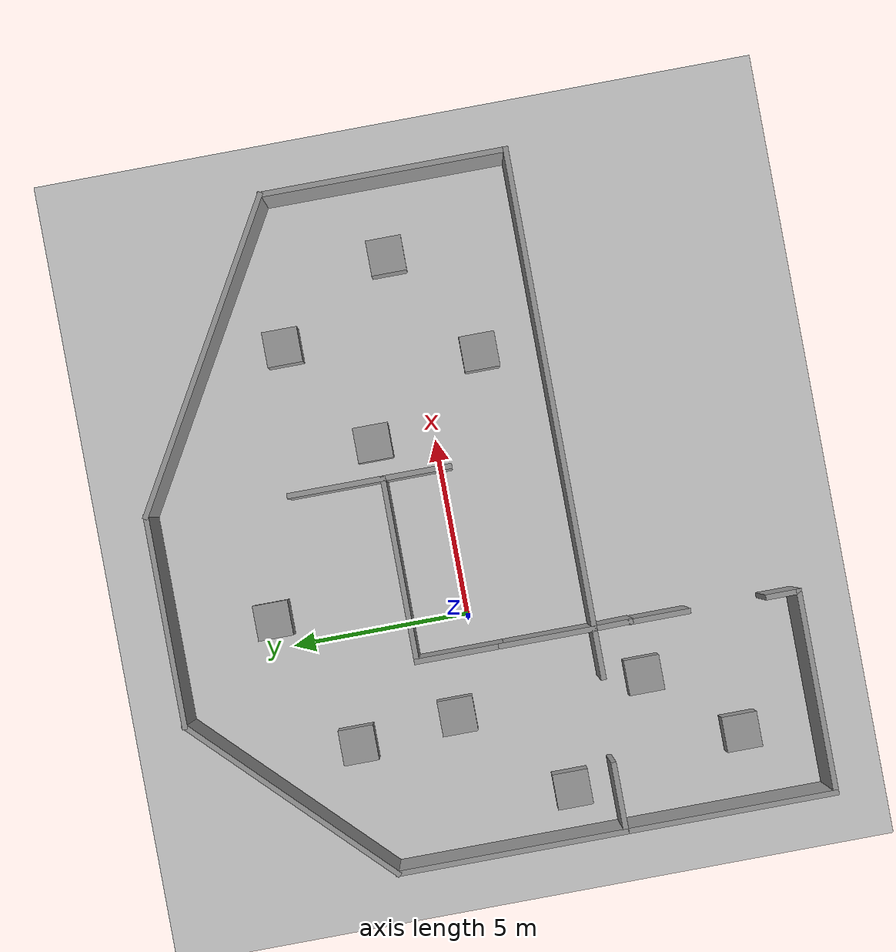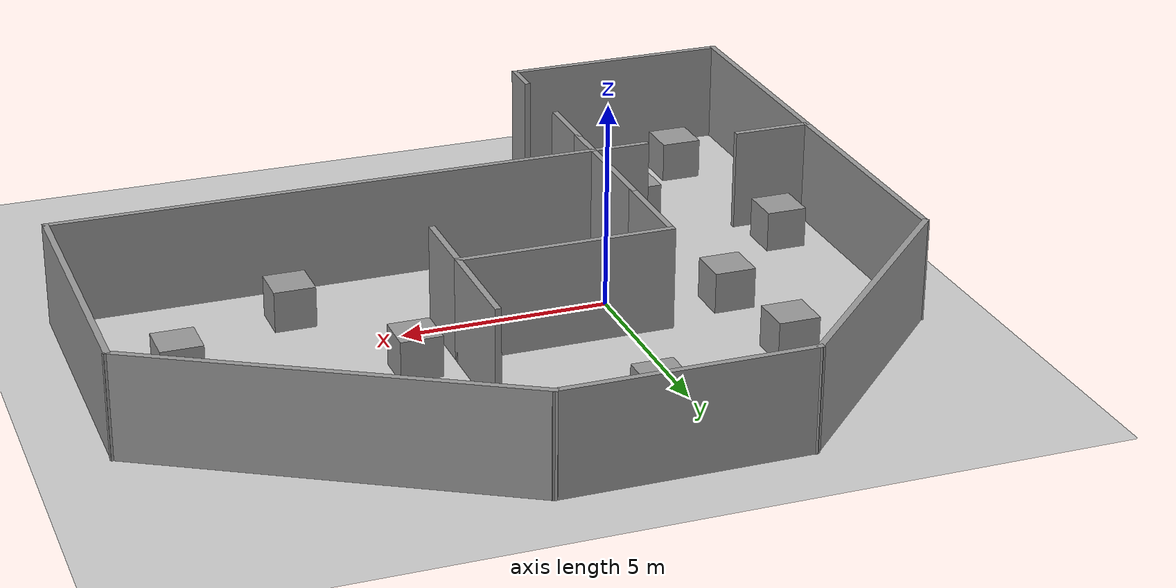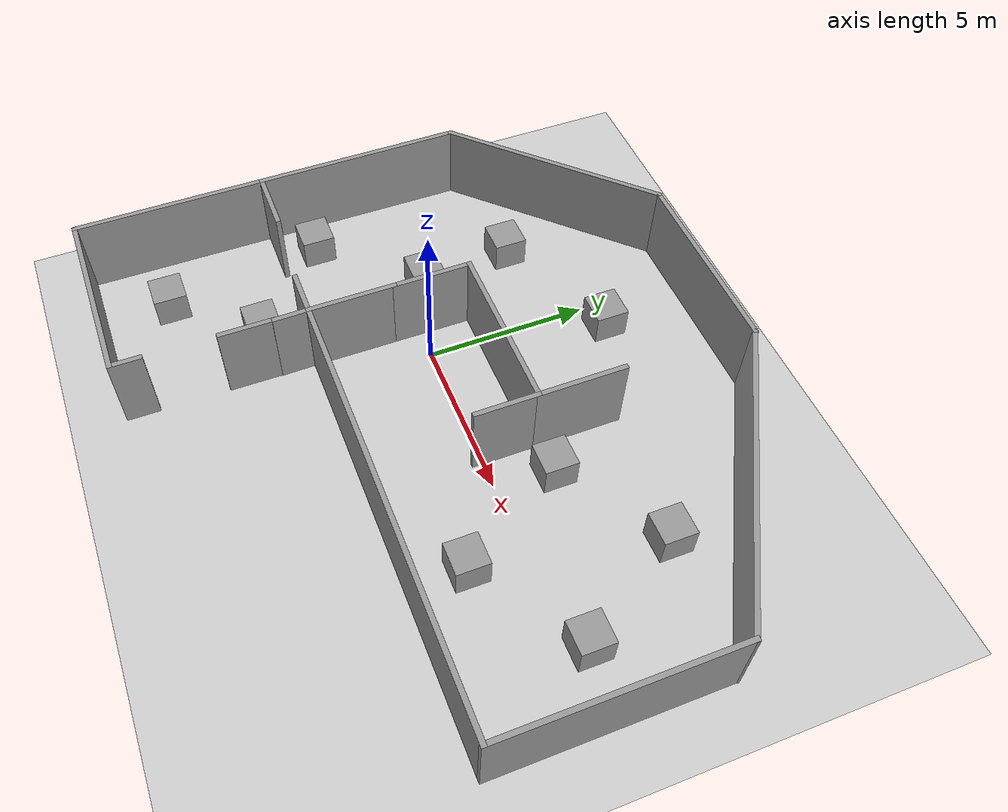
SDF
<sdf version="1.6">
 <world name="default">
  <plugin name="ardupilot_sitl_gazebo_plugin" filename="libardupilot_sitl_gazebo_plugin_rover.so">
   <UAV_MODEL>rover</UAV_MODEL>
  </plugin>
  <light name="sun" type="directional">
   <pose>0 0 10 0 -0 0</pose>
   <diffuse>0.8 0.8 0.8 1</diffuse>
   <specular>0.2 0.2 0.2 1</specular>
   <attenuation>
    <range>1000</range>
    <constant>0.9</constant>
    <linear>0.01</linear>
    <quadratic>0.001</quadratic>
   </attenuation>
   <direction>-0.5 0.1 -0.9</direction>
  </light>
  <model name="ground_plane">
   <static>1</static>
   <link name="link">
    <collision name="collision">
     <geometry><plane><normal>0 0 1</normal><size>100 100</size></plane></geometry>
     <surface><friction><ode><mu>100</mu><mu2>50</mu2></ode></friction></surface>
    </collision>
    <visual name="visual">
     <cast_shadows>0</cast_shadows>
     <geometry><plane><normal>0 0 1</normal><size>100 100</size></plane></geometry>
     <material>
      <script><uri>file://media/materials/scripts/gazebo.material</uri><name>Gazebo/Grey</name></script>
     </material>
    </visual>
   </link>
  </model>
  <gravity>0 0 -9.8</gravity>
  <magnetic_field>6e-06 2.3e-05 -4.2e-05</magnetic_field>
  <atmosphere type="adiabatic"/>
  <physics name="default_physics" default="0" type="ode">
   <max_step_size>0.001</max_step_size>
   <real_time_factor>1</real_time_factor>
   <real_time_update_rate>1000</real_time_update_rate>
  </physics>
  <scene><ambient>0.4 0.4 0.4 1</ambient><background>0.7 0.7 0.7 1</background><shadows>1</shadows></scene>
  <spherical_coordinates>
   <surface_model>EARTH_WGS84</surface_model>
   <latitude_deg>0</latitude_deg>
   <longitude_deg>0</longitude_deg>
   <elevation>0</elevation>
   <heading_deg>0</heading_deg>
  </spherical_coordinates>
  <model name="weird_building">
   <pose>2.9143 -0.409696 0 0 -0 0</pose>
   <link name="Wall_0">
    <collision name="Wall_0_Collision">
     <geometry><box><size>2.75 0.15 2.5</size></box></geometry>
     <pose>0 0 1.25 0 -0 0</pose>
    </collision>
    <visual name="Wall_0_Visual">
     <pose>0 0 1.25 0 -0 0</pose>
     <geometry><box><size>2.75 0.15 2.5</size></box></geometry>
     <material>
      <script><uri>file://media/materials/scripts/gazebo.material</uri><name>Gazebo/Grey</name></script>
      <ambient>1 1 1 1</ambient>
     </material>
     <meta><layer>0</layer></meta>
    </visual>
    <pose>-3.8643 -1.6303 0 0 -0 1.5708</pose>
   </link>
   <link name="Wall_10">
    <collision name="Wall_10_Collision">
     <geometry><box><size>9.5 0.15 2.5</size></box></geometry>
     <pose>0 0 1.25 0 -0 0</pose>
    </collision>
    <visual name="Wall_10_Visual">
     <pose>0 0 1.25 0 -0 0</pose>
     <geometry><box><size>9.5 0.15 2.5</size></box></geometry>
     <material>
      <script><uri>file://media/materials/scripts/gazebo.material</uri><name>Gazebo/Grey</name></script>
      <ambient>1 1 1 1</ambient>
     </material>
     <meta><layer>0</layer></meta>
    </visual>
    <pose>5.43704 6.2572 0 0 -0 2.61799</pose>
   </link>
   <link name="Wall_11">
    <collision name="Wall_11_Collision">
     <geometry><box><size>6 0.15 2.5</size></box></geometry>
     <pose>0 0 1.25 0 -0 0</pose>
    </collision>
    <visual name="Wall_11_Visual">
     <pose>0 0 1.25 0 -0 0</pose>
     <geometry><box><size>6 0.15 2.5</size></box></geometry>
     <material>
      <script><uri>file://media/materials/scripts/gazebo.material</uri><name>Gazebo/Grey</name></script>
      <ambient>1 1 1 1</ambient>
     </material>
     <meta><layer>0</layer></meta>
    </visual>
    <pose>-1.53663 8.5947 0 0 -0 3.14159</pose>
   </link>
   <link name="Wall_12">
    <collision name="Wall_12_Collision">
     <geometry><box><size>7.25 0.15 2.5</size></box></geometry>
     <pose>0 0 1.25 0 -0 0</pose>
    </collision>
    <visual name="Wall_12_Visual">
     <pose>0 0 1.25 0 -0 0</pose>
     <geometry><box><size>7.25 0.15 2.5</size></box></geometry>
     <material>
      <script><uri>file://media/materials/scripts/gazebo.material</uri><name>Gazebo/Grey</name></script>
      <ambient>1 1 1 1</ambient>
     </material>
     <meta><layer>0</layer></meta>
    </visual>
    <pose>-6.97186 6.08447 0 0 0 -2.35619</pose>
   </link>
   <link name="Wall_15">
    <collision name="Wall_15_Collision">
     <geometry><box><size>2.75 0.15 2.5</size></box></geometry>
     <pose>0 0 1.25 0 -0 0</pose>
    </collision>
    <visual name="Wall_15_Visual">
     <pose>0 0 1.25 0 -0 0</pose>
     <geometry><box><size>2.75 0.15 2.5</size></box></geometry>
     <material>
      <script><uri>file://media/materials/scripts/gazebo.material</uri><name>Gazebo/Grey</name></script>
      <ambient>1 1 1 1</ambient>
     </material>
     <meta><layer>0</layer></meta>
    </visual>
    <pose>1.2357 3.3197 0 0 -0 1.5708</pose>
   </link>
   <link name="Wall_17">
    <collision name="Wall_17_Collision">
     <geometry><box><size>6.5 0.15 2.5</size></box></geometry>
     <pose>0 0 1.25 0 -0 0</pose>
    </collision>
    <visual name="Wall_17_Visual">
     <pose>0 0 1.25 0 -0 0</pose>
     <geometry><box><size>6.5 0.15 2.5</size></box></geometry>
     <material>
      <script><uri>file://media/materials/scripts/gazebo.material</uri><name>Gazebo/Grey</name></script>
      <ambient>1 1 1 1</ambient>
     </material>
     <meta><layer>0</layer></meta>
    </visual>
    <pose>-9.48209 0.399237 0 0 0 -1.5708</pose>
   </link>
   <link name="Wall_19">
    <collision name="Wall_19_Collision">
     <geometry><box><size>6 0.15 2.5</size></box></geometry>
     <pose>0 0 1.25 0 -0 0</pose>
    </collision>
    <visual name="Wall_19_Visual">
     <pose>0 0 1.25 0 -0 0</pose>
     <geometry><box><size>6 0.15 2.5</size></box></geometry>
     <material>
      <script><uri>file://media/materials/scripts/gazebo.material</uri><name>Gazebo/Grey</name></script>
      <ambient>1 1 1 1</ambient>
     </material>
     <meta><layer>0</layer></meta>
    </visual>
    <pose>-9.48209 -5.70076 0 0 0 -1.5708</pose>
   </link>
   <link name="Wall_2">
    <collision name="Wall_2_Collision">
     <geometry><box><size>2.5 0.15 2.5</size></box></geometry>
     <pose>0 0 1.25 0 -0 0</pose>
    </collision>
    <visual name="Wall_2_Visual">
     <pose>0 0 1.25 0 -0 0</pose>
     <geometry><box><size>2.5 0.15 2.5</size></box></geometry>
     <material>
      <script><uri>file://media/materials/scripts/gazebo.material</uri><name>Gazebo/Grey</name></script>
      <ambient>1 1 1 1</ambient>
     </material>
     <meta><layer>0</layer></meta>
    </visual>
    <pose>-3.8643 0.844696 0 0 -0 1.5708</pose>
   </link>
   <link name="Wall_20">
    <collision name="Wall_20_Collision">
     <geometry><box><size>5.75 0.15 2.5</size></box></geometry>
     <pose>0 0 1.25 0 -0 0</pose>
    </collision>
    <visual name="Wall_20_Visual">
     <pose>0 0 1.25 0 -0 0</pose>
     <geometry><box><size>5.75 0.15 2.5</size></box></geometry>
     <material>
      <script><uri>file://media/materials/scripts/gazebo.material</uri><name>Gazebo/Grey</name></script>
      <ambient>1 1 1 1</ambient>
     </material>
     <meta><layer>0</layer></meta>
    </visual>
    <pose>-6.68209 -8.62576 0 0 -0 0</pose>
   </link>
   <link name="Wall_21">
    <collision name="Wall_21_Collision">
     <geometry><box><size>1 0.15 2.5</size></box></geometry>
     <pose>0 0 1.25 0 -0 0</pose>
    </collision>
    <visual name="Wall_21_Visual">
     <pose>0 0 1.25 0 -0 0</pose>
     <geometry><box><size>1 0.15 2.5</size></box></geometry>
     <material>
      <script><uri>file://media/materials/scripts/gazebo.material</uri><name>Gazebo/Grey</name></script>
      <ambient>1 1 1 1</ambient>
     </material>
     <meta><layer>0</layer></meta>
    </visual>
    <pose>-3.88209 -8.20076 0 0 -0 1.5708</pose>
   </link>
   <link name="Wall_23">
    <collision name="Wall_23_Collision">
     <geometry><box><size>1.15921 0.15 2.5</size></box></geometry>
     <pose>0 0 1.25 0 -0 0</pose>
    </collision>
    <visual name="Wall_23_Visual">
     <pose>0 0 1.25 0 -0 0</pose>
     <geometry><box><size>1.15921 0.15 2.5</size></box></geometry>
     <material>
      <script><uri>file://media/materials/scripts/gazebo.material</uri><name>Gazebo/Grey</name></script>
      <ambient>1 1 1 1</ambient>
     </material>
     <meta><layer>0</layer></meta>
    </visual>
    <pose>-3.85669 -3.43468 0 0 0 -1.55572</pose>
   </link>
   <link name="Wall_25">
    <collision name="Wall_25_Collision">
     <geometry><box><size>1.5 0.15 2.5</size></box></geometry>
     <pose>0 0 1.25 0 -0 0</pose>
    </collision>
    <visual name="Wall_25_Visual">
     <pose>0 0 1.25 0 -0 0</pose>
     <geometry><box><size>1.5 0.15 2.5</size></box></geometry>
     <material>
      <script><uri>file://media/materials/scripts/gazebo.material</uri><name>Gazebo/Grey</name></script>
      <ambient>1 1 1 1</ambient>
     </material>
     <meta><layer>0</layer></meta>
    </visual>
    <pose>-4.5393 -2.9303 0 0 -0 3.14159</pose>
   </link>
   <link name="Wall_27">
    <collision name="Wall_27_Collision">
     <geometry><box><size>2 0.15 2.5</size></box></geometry>
     <pose>0 0 1.25 0 -0 0</pose>
    </collision>
    <visual name="Wall_27_Visual">
     <pose>0 0 1.25 0 -0 0</pose>
     <geometry><box><size>2 0.15 2.5</size></box></geometry>
     <material>
      <script><uri>file://media/materials/scripts/gazebo.material</uri><name>Gazebo/Grey</name></script>
      <ambient>1 1 1 1</ambient>
     </material>
     <meta><layer>0</layer></meta>
    </visual>
    <pose>-8.55709 -2.77576 0 0 -0 0</pose>
   </link>
   <link name="Wall_29">
    <collision name="Wall_29_Collision">
     <geometry><box><size>1.75 0.15 2.5</size></box></geometry>
     <pose>0 0 1.25 0 -0 0</pose>
    </collision>
    <visual name="Wall_29_Visual">
     <pose>0 0 1.25 0 -0 0</pose>
     <geometry><box><size>1.75 0.15 2.5</size></box></geometry>
     <material>
      <script><uri>file://media/materials/scripts/gazebo.material</uri><name>Gazebo/Grey</name></script>
      <ambient>1 1 1 1</ambient>
     </material>
     <meta><layer>0</layer></meta>
    </visual>
    <pose>-3.8643 -4.73905 0 0 0 -1.5708</pose>
   </link>
   <link name="Wall_4">
    <collision name="Wall_4_Collision">
     <geometry><box><size>5.25 0.15 2.5</size></box></geometry>
     <pose>0 0 1.25 0 -0 0</pose>
    </collision>
    <visual name="Wall_4_Visual">
     <pose>0 0 1.25 0 -0 0</pose>
     <geometry><box><size>5.25 0.15 2.5</size></box></geometry>
     <material>
      <script><uri>file://media/materials/scripts/gazebo.material</uri><name>Gazebo/Grey</name></script>
      <ambient>1 1 1 1</ambient>
     </material>
     <meta><layer>0</layer></meta>
    </visual>
    <pose>-1.3143 2.0197 0 0 -0 0</pose>
   </link>
   <link name="Wall_5">
    <collision name="Wall_5_Collision">
     <geometry><box><size>2 0.15 2.5</size></box></geometry>
     <pose>0 0 1.25 0 -0 0</pose>
    </collision>
    <visual name="Wall_5_Visual">
     <pose>0 0 1.25 0 -0 0</pose>
     <geometry><box><size>2 0.15 2.5</size></box></geometry>
     <material>
      <script><uri>file://media/materials/scripts/gazebo.material</uri><name>Gazebo/Grey</name></script>
      <ambient>1 1 1 1</ambient>
     </material>
     <meta><layer>0</layer></meta>
    </visual>
    <pose>1.2357 1.0947 0 0 0 -1.5708</pose>
   </link>
   <link name="Wall_7">
    <collision name="Wall_7_Collision">
     <geometry><box><size>13.5 0.15 2.5</size></box></geometry>
     <pose>0 0 1.25 0 -0 0</pose>
    </collision>
    <visual name="Wall_7_Visual">
     <pose>0 0 1.25 0 -0 0</pose>
     <geometry><box><size>13.5 0.15 2.5</size></box></geometry>
     <material>
      <script><uri>file://media/materials/scripts/gazebo.material</uri><name>Gazebo/Grey</name></script>
      <ambient>1 1 1 1</ambient>
     </material>
     <meta><layer>0</layer></meta>
    </visual>
    <pose>2.8107 -2.9303 0 0 -0 0</pose>
   </link>
   <link name="Wall_8">
    <collision name="Wall_8_Collision">
     <geometry><box><size>7 0.15 2.5</size></box></geometry>
     <pose>0 0 1.25 0 -0 0</pose>
    </collision>
    <visual name="Wall_8_Visual">
     <pose>0 0 1.25 0 -0 0</pose>
     <geometry><box><size>7 0.15 2.5</size></box></geometry>
     <material>
      <script><uri>file://media/materials/scripts/gazebo.material</uri><name>Gazebo/Grey</name></script>
      <ambient>1 1 1 1</ambient>
     </material>
     <meta><layer>0</layer></meta>
    </visual>
    <pose>9.4857 0.494696 0 0 -0 1.5708</pose>
   </link>
   <static>1</static>
  </model>
  <plugin name="event_plugin" filename="libSimEventsPlugin.so">
   <region>
    <name>maze_exit</name>
    <volume><min>-0.711777 -8.17854 -1</min><max>1 -6.02775 1</max></volume>
   </region>
   <event>
    <name>maze_exit_event</name>
    <type>occupied</type>
    <region>maze_exit</region>
    <topic>~/region</topic>
    <msg_data>exited_the_maze</msg_data>
   </event>
  </plugin>
  <model name="unit_box">
   <pose>7.18955 -1.65518 0.499995 -1e-05 -0 -0</pose>
   <link name="link">
    <inertial>
     <mass>1</mass>
     <inertia>
      <ixx>0.166667</ixx>
      <ixy>0</ixy>
      <ixz>0</ixz>
      <iyy>0.166667</iyy>
      <iyz>0</iyz>
      <izz>0.166667</izz>
     </inertia>
    </inertial>
    <collision name="collision"><geometry><box><size>1 1 1</size></box></geometry></collision>
    <visual name="visual">
     <geometry><box><size>1 1 1</size></box></geometry>
     <material>
      <script><name>Gazebo/Grey</name><uri>file://media/materials/scripts/gazebo.material</uri></script>
     </material>
    </visual>
   </link>
  </model>
  <model name="unit_box_0">
   <pose>10.3036 0.426383 0.499995 0 1e-05 0</pose>
   <link name="link">
    <inertial>
     <mass>1</mass>
     <inertia>
      <ixx>0.166667</ixx>
      <ixy>0</ixy>
      <ixz>0</ixz>
      <iyy>0.166667</iyy>
      <iyz>0</iyz>
      <izz>0.166667</izz>
     </inertia>
    </inertial>
    <collision name="collision"><geometry><box><size>1 1 1</size></box></geometry></collision>
    <visual name="visual">
     <geometry><box><size>1 1 1</size></box></geometry>
     <material>
      <script><name>Gazebo/Grey</name><uri>file://media/materials/scripts/gazebo.material</uri></script>
     </material>
    </visual>
   </link>
  </model>
  <model name="unit_box_1">
   <pose>5.22064 1.74076 0.499995 -1e-05 -0 -0</pose>
   <link name="link">
    <inertial>
     <mass>1</mass>
     <inertia>
      <ixx>0.166667</ixx>
      <ixy>0</ixy>
      <ixz>0</ixz>
      <iyy>0.166667</iyy>
      <iyz>0</iyz>
      <izz>0.166667</izz>
     </inertia>
    </inertial>
    <collision name="collision"><geometry><box><size>1 1 1</size></box></geometry></collision>
    <visual name="visual">
     <geometry><box><size>1 1 1</size></box></geometry>
     <material>
      <script><name>Gazebo/Grey</name><uri>file://media/materials/scripts/gazebo.material</uri></script>
     </material>
    </visual>
   </link>
  </model>
  <model name="unit_box_2">
   <pose>8.31418 3.75227 0.499995 0 1e-05 0</pose>
   <link name="link">
    <inertial>
     <mass>1</mass>
     <inertia>
      <ixx>0.166667</ixx>
      <ixy>0</ixy>
      <ixz>0</ixz>
      <iyy>0.166667</iyy>
      <iyz>0</iyz>
      <izz>0.166667</izz>
     </inertia>
    </inertial>
    <collision name="collision"><geometry><box><size>1 1 1</size></box></geometry></collision>
    <visual name="visual">
     <geometry><box><size>1 1 1</size></box></geometry>
     <material>
      <script><name>Gazebo/Grey</name><uri>file://media/materials/scripts/gazebo.material</uri></script>
     </material>
    </visual>
   </link>
  </model>
  <model name="unit_box_3">
   <pose>0.840784 5.399 0.499995 -1e-05 -0 -0</pose>
   <link name="link">
    <inertial>
     <mass>1</mass>
     <inertia>
      <ixx>0.166667</ixx>
      <ixy>0</ixy>
      <ixz>0</ixz>
      <iyy>0.166667</iyy>
      <iyz>0</iyz>
      <izz>0.166667</izz>
     </inertia>
    </inertial>
    <collision name="collision"><geometry><box><size>1 1 1</size></box></geometry></collision>
    <visual name="visual">
     <geometry><box><size>1 1 1</size></box></geometry>
     <material>
      <script><name>Gazebo/Grey</name><uri>file://media/materials/scripts/gazebo.material</uri></script>
     </material>
    </visual>
   </link>
  </model>
  <model name="unit_box_4">
   <pose>-3.02488 3.67947 0.499995 0 1e-05 0</pose>
   <link name="link">
    <inertial>
     <mass>1</mass>
     <inertia>
      <ixx>0.166667</ixx>
      <ixy>0</ixy>
      <ixz>0</ixz>
      <iyy>0.166667</iyy>
      <iyz>0</iyz>
      <izz>0.166667</izz>
     </inertia>
    </inertial>
    <collision name="collision"><geometry><box><size>1 1 1</size></box></geometry></collision>
    <visual name="visual">
     <geometry><box><size>1 1 1</size></box></geometry>
     <material>
      <script><name>Gazebo/Grey</name><uri>file://media/materials/scripts/gazebo.material</uri></script>
     </material>
    </visual>
   </link>
  </model>
  <model name="unit_box_5">
   <pose>-2.7283 0.805893 0.499995 1e-05 -0 0</pose>
   <link name="link">
    <inertial>
     <mass>1</mass>
     <inertia>
      <ixx>0.166667</ixx>
      <ixy>0</ixy>
      <ixz>0</ixz>
      <iyy>0.166667</iyy>
      <iyz>0</iyz>
      <izz>0.166667</izz>
     </inertia>
    </inertial>
    <collision name="collision"><geometry><box><size>1 1 1</size></box></geometry></collision>
    <visual name="visual">
     <geometry><box><size>1 1 1</size></box></geometry>
     <material>
      <script><name>Gazebo/Grey</name><uri>file://media/materials/scripts/gazebo.material</uri></script>
     </material>
    </visual>
   </link>
  </model>
  <model name="unit_box_6">
   <pose>-5.32752 -1.99334 0.499995 0 1e-05 0</pose>
   <link name="link">
    <inertial>
     <mass>1</mass>
     <inertia>
      <ixx>0.166667</ixx>
      <ixy>0</ixy>
      <ixz>0</ixz>
      <iyy>0.166667</iyy>
      <iyz>0</iyz>
      <izz>0.166667</izz>
     </inertia>
    </inertial>
    <collision name="collision"><geometry><box><size>1 1 1</size></box></geometry></collision>
    <visual name="visual">
     <geometry><box><size>1 1 1</size></box></geometry>
     <material>
      <script><name>Gazebo/Grey</name><uri>file://media/materials/scripts/gazebo.material</uri></script>
     </material>
    </visual>
   </link>
  </model>
  <model name="unit_box_7">
   <pose>-4.60949 -6.93926 0.499995 -1e-05 -0 0</pose>
   <link name="link">
    <inertial>
     <mass>1</mass>
     <inertia>
      <ixx>0.166667</ixx>
      <ixy>0</ixy>
      <ixz>0</ixz>
      <iyy>0.166667</iyy>
      <iyz>0</iyz>
      <izz>0.166667</izz>
     </inertia>
    </inertial>
    <collision name="collision"><geometry><box><size>1 1 1</size></box></geometry></collision>
    <visual name="visual">
     <geometry><box><size>1 1 1</size></box></geometry>
     <material>
      <script><name>Gazebo/Grey</name><uri>file://media/materials/scripts/gazebo.material</uri></script>
     </material>
    </visual>
   </link>
  </model>
  <model name="unit_box_8">
   <pose>-2.54852 -4.53746 0.5 0 -0 0</pose>
   <link name="link">
    <inertial>
     <mass>1</mass>
     <inertia>
      <ixx>0.166667</ixx>
      <ixy>0</ixy>
      <ixz>0</ixz>
      <iyy>0.166667</iyy>
      <iyz>0</iyz>
      <izz>0.166667</izz>
     </inertia>
    </inertial>
    <collision name="collision"><geometry><box><size>1 1 1</size></box></geometry></collision>
    <visual name="visual">
     <geometry><box><size>1 1 1</size></box></geometry>
     <material>
      <script><name>Gazebo/Grey</name><uri>file://media/materials/scripts/gazebo.material</uri></script>
     </material>
    </visual>
   </link>
  </model>
 </world>
</sdf>
